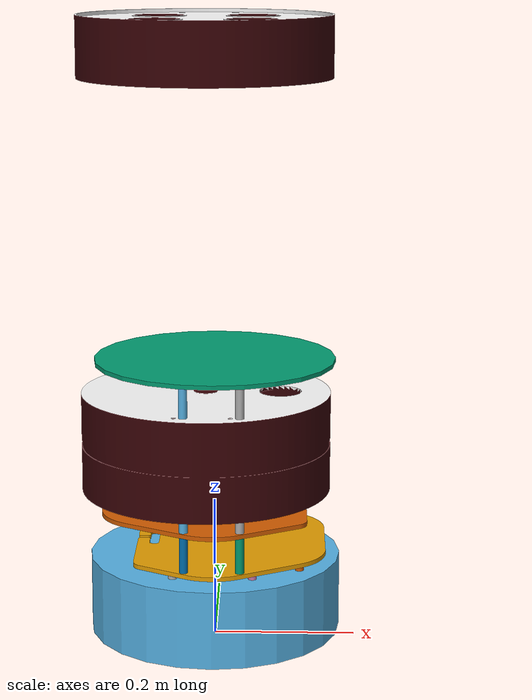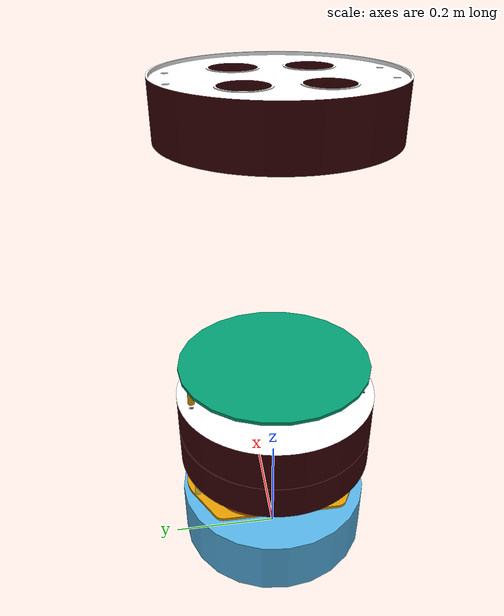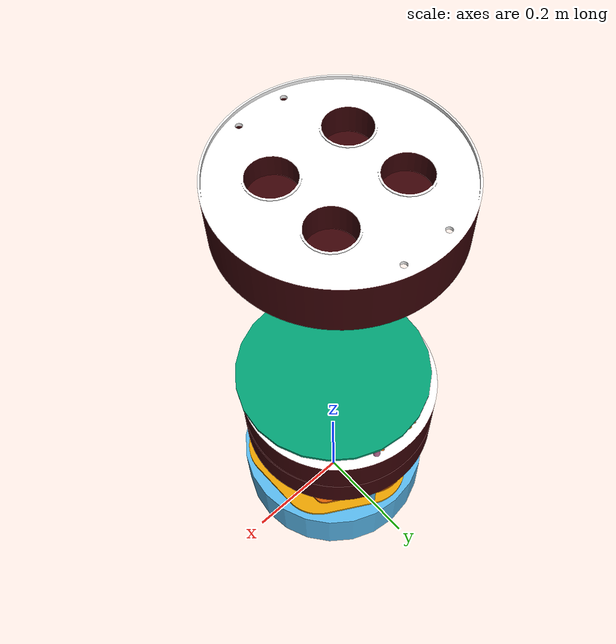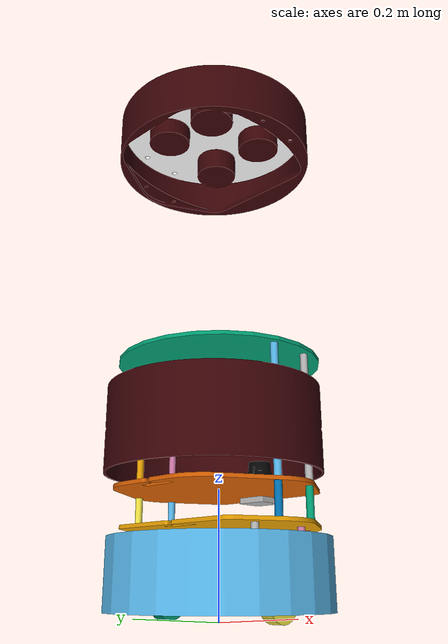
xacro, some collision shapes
<?xml version="1.0"?>

<robot name="barista" xmlns:xacro="http://ros.org/wiki/xacro">

  <xacro:arg name="robot_name" default="barista_X"/>
  <xacro:property name="robot_name_prop" value="$(arg robot_name)"/>

  <xacro:include filename="$(find barista_description)/robot/common_properties.xacro"/>
  <xacro:include filename="$(find barista_description)/robot/barista_properties.xacro"/>
  <!-- Bases -->
  <xacro:include filename="$(find barista_description)/robot/barista_kobuki.xacro" />
  <!-- Stacks -->
  <xacro:include filename="$(find barista_description)/robot/barista_hexagons.xacro"/>

  <xacro:include filename="$(find barista_description)/robot/barista_mod.xacro" />
  <xacro:include filename="$(find barista_description)/robot/barista_hokuyo.xacro" />

  <xacro:barista_kobuki robot_name="$(arg robot_name)"/>

  <xacro:if value="${'barista' in robot_name_prop}">
    <xacro:stack_hexagons parent="base_link"/>
    <xacro:barista_mod  bottom_parent="plate_middle_link" top_parent="plate_top_link"/>
  </xacro:if>

  <xacro:if value="${'mule' in robot_name_prop}">
    <xacro:stack_hexagons_mule parent="base_link"/>
    <xacro:barista_mod_mule  bottom_parent="plate_middle_link" top_parent="plate_middle_link"/>
  </xacro:if>

  <xacro:barista_hokuyo  parent="plate_middle_link" x_hok="0.116647" y_hok="0.0" z_hok="0.045" robot_name="$(arg robot_name)"/>

</robot>

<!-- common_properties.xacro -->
<!--
  Various useful properties such as constants and materials
 -->
<robot name="xacro_properties" xmlns:xacro="http://ros.org/wiki/xacro">

  <xacro:property name="M_PI" value="3.1415926535897931" />

  <xacro:property name="material_white">
    <material name="white">
      <color rgba="1 1 1 1"/>
    </material>
  </xacro:property>
  <xacro:property name="material_grey">
    <material name="grey">
      <color rgba="0.5 0.5 0.5 1"/>
    </material>
  </xacro:property>
  <xacro:property name="material_light_grey">
    <material name="light_grey">
      <color rgba="0.6 0.6 0.6 1"/>
    </material>
  </xacro:property>
  <xacro:property name="material_dark_grey">
    <material name="dark_grey">
      <color rgba="0.3 0.3 0.3 1"/>
    </material>
  </xacro:property>
  <xacro:property name="material_black">
    <material name="black">
      <color rgba="0.1 0.1 0.1 1"/>
    </material>
  </xacro:property>
  <xacro:property name="material_red">
    <material name="red">
      <color rgba="1 0 0 1"/>
    </material>
  </xacro:property>
  <xacro:property name="material_green">
    <material name="green">
      <color rgba="0.0 0.8 0.0 1"/>
    </material>
  </xacro:property>
  <xacro:property name="material_blue">
    <material name="blue">
      <color rgba="0.0 0.0 1.0 1"/>
    </material>
  </xacro:property>
  <xacro:property name="material_grey_blue">
    <material name="grey_blue">
      <color rgba="0.4 0.4 1.0 1"/>
    </material>
  </xacro:property>
  <xacro:property name="material_orange">
    <material name="orange">
      <color rgba="1.0 0.7 0.0 1"/>
    </material>
  </xacro:property>

</robot>

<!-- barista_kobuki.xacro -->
<robot name="barista_kobuki" xmlns:xacro="http://ros.org/wiki/xacro">

  <xacro:arg name="robot_name" default="barista_X"/>

  <xacro:include filename="$(find barista_description)/robot/kobuki/common_properties.urdf.xacro"/>
  <xacro:include filename="$(find barista_description)/robot/barista_kobuki_gazebo.xacro"/>

  <!-- Kobuki -->
  <xacro:macro name="barista_kobuki" params="robot_name">

    <link name="base_footprint"/>
    <joint name="base_joint" type="fixed">
      <origin xyz="0 0 0.0102" rpy="0 0 0" />
      <parent link="base_footprint"/>
      <child link="base_link" />
    </joint>
    <link name="base_link">
      <visual>
        <geometry>
          <!-- new mesh -->
          <mesh filename="package://barista_description/meshes/kobuki/main_body.dae" />
        </geometry>
        <origin xyz="0.001 0 0.05199" rpy="0 0 0"/>
      </visual>
      <collision>
        <geometry>
          <cylinder length="0.10938" radius="0.178"/>
        </geometry>
        <origin xyz="0.0 0 0.05949" rpy="0 0 0"/>
      </collision>
      <inertial>
        <!-- COM experimentally determined -->
        <origin xyz="0.01 0 0"/>
        <mass value="2.4"/> <!-- 2.4/2.6 kg for small/big battery pack -->
        <inertia ixx="0.019995" ixy="0.0" ixz="0.0"
                 iyy="0.019995" iyz="0.0"
                 izz="0.03675" />
      </inertial>
    </link>

    <joint name="${robot_name}/joint_tire_left" type="continuous">
    <parent link="base_link"/>
    <child link="${robot_name}/wheel_left_link"/>
    <origin rpy="-1.5707963267948966 0 0" xyz="0.00 0.115 0.0250"/>
    <axis xyz="0 0 1"/>
  </joint>
  <link name="${robot_name}/wheel_left_link">
    <visual>
      <geometry>
        <mesh filename="package://barista_description/meshes/wheel.dae"/>
      </geometry>
      <origin rpy="0 0 0" xyz="0 0 0"/>
    </visual>
    <collision>
      <geometry>
        <cylinder length="0.0206" radius="0.0352"/>
      </geometry>
      <origin rpy="0 0 0" xyz="0 0 0"/>
    </collision>
    <inertial>
      <mass value="0.01"/>
      <origin xyz="0 0 0"/>
      <inertia ixx="0.001" ixy="0.0" ixz="0.0" iyy="0.001" iyz="0.0" izz="0.001"/>
    </inertial>
  </link>
  <joint name="${robot_name}/joint_tire_right" type="continuous">
    <parent link="base_link"/>
    <child link="${robot_name}/wheel_right_link"/>
    <origin rpy="-1.5707963267948966 0 0" xyz="0.00 -0.115 0.0250"/>
    <axis xyz="0 0 1"/>
  </joint>
  <link name="${robot_name}/wheel_right_link">
    <visual>
      <geometry>
        <mesh filename="package://barista_description/meshes/wheel.dae"/>
      </geometry>
      <origin rpy="0 0 0" xyz="0 0 0"/>
    </visual>
    <collision>
      <geometry>
        <cylinder length="0.0206" radius="0.0350"/>
      </geometry>
      <origin rpy="0 0 0" xyz="0 0 0"/>
    </collision>
    <inertial>
      <mass value="0.01"/>
      <origin xyz="0 0 0"/>
      <inertia ixx="0.001" ixy="0.0" ixz="0.0" iyy="0.001" iyz="0.0" izz="0.001"/>
    </inertial>
  </link>

    <joint name="caster_front_joint" type="fixed">
      <parent link="base_link"/>
      <child link="caster_front_link"/>
      <origin xyz="0.115 0.0 0.007" rpy="${-M_PI/2} 0 0"/>
    </joint>
    <link name="caster_front_link">
      <collision>
        <geometry>
          <cylinder length="0.0176" radius="0.017"/>
        </geometry>
        <origin rpy="0 0 0" xyz="0 0 0"/>
      </collision>
      <inertial>
        <mass value="0.01" />
        <origin xyz="0 0 0" />
        <inertia ixx="0.001" ixy="0.0" ixz="0.0"
                 iyy="0.001" iyz="0.0"
                 izz="0.001" />
      </inertial>
    </link>

    <joint name="caster_back_joint" type="fixed">
      <parent link="base_link"/>
      <child link="caster_back_link"/>
      <origin xyz="-0.135 0.0 0.009" rpy="${-M_PI/2} 0 0"/>
    </joint>
    <link name="caster_back_link">
      <collision>
        <geometry>
          <cylinder length="0.0176" radius="0.017"/>
        </geometry>
        <origin rpy="0 0 0" xyz="0 0 0"/>
      </collision>
      <inertial>
        <mass value="0.01" />
        <origin xyz="0 0 0" />
        <inertia ixx="0.001" ixy="0.0" ixz="0.0"
                 iyy="0.001" iyz="0.0"
                 izz="0.001" />
      </inertial>
    </link>

    <!-- Kobuki's sensors -->
    <joint name="gyro_joint" type="fixed">
      <axis xyz="0 1 0"/>
      <origin xyz="0.056 0.062 0.0202" rpy="0 0 0"/>
      <parent link="base_link"/>
      <child link="gyro_link"/>
    </joint>
    <link name="gyro_link">
      <inertial>
        <mass value="0.001"/>
        <origin xyz="0 0 0" rpy="0 0 0"/>
        <inertia ixx="0.0001" ixy="0" ixz="0"
                 iyy="0.000001" iyz="0"
                 izz="0.0001"/>
      </inertial>
    </link>

    <joint name="cliff_sensor_left_joint" type="fixed">
      <origin xyz="0.08734 0.13601 0.0214" rpy="0 ${M_PI/2} 0" />
      <parent link="base_link"/>
      <child link="cliff_sensor_left_link" />
    </joint>
    <link name="cliff_sensor_left_link">
      <inertial>
        <mass value="0.0001" />
        <origin xyz="0 0 0" />
        <inertia ixx="0.0001" ixy="0.0" ixz="0.0"
                 iyy="0.0001" iyz="0.0"
                 izz="0.0001" />
      </inertial>
    </link>

    <joint name="cliff_sensor_right_joint" type="fixed">
      <origin xyz="0.085 -0.13601 0.0214" rpy="0 ${M_PI/2} 0" />
      <parent link="base_link"/>
      <child link="cliff_sensor_right_link" />
    </joint>
    <link name="cliff_sensor_right_link">
      <inertial>
        <mass value="0.0001" />
        <origin xyz="0 0 0" />
        <inertia ixx="0.0001" ixy="0.0" ixz="0.0"
                 iyy="0.0001" iyz="0.0"
                 izz="0.0001" />
      </inertial>
    </link>

    <joint name="cliff_sensor_front_joint" type="fixed">
      <origin xyz="0.156 0.00 0.0214" rpy="0 ${M_PI/2} 0" />
      <parent link="base_link"/>
      <child link="cliff_sensor_front_link" />
    </joint>
    <link name="cliff_sensor_front_link">
      <inertial>
        <mass value="0.0001" />
        <origin xyz="0 0 0" />
        <inertia ixx="0.0001" ixy="0.0" ixz="0.0"
                 iyy="0.0001" iyz="0.0"
                 izz="0.0001" />
      </inertial>
    </link>

    <!-- Kobuki Gazebo simulation details -->
    <xacro:kobuki_sim robot_name="$(arg robot_name)"/>

  </xacro:macro>

</robot>

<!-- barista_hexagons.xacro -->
<!--
  Hexagon stacks
 -->
<robot name="stack_hexagons" xmlns:xacro="http://ros.org/wiki/xacro">
  <xacro:include filename="$(find barista_description)/robot/turtlebot/common_properties.urdf.xacro"/>

  <!-- Xacro properties -->
  <xacro:property name="M_SCALE" value="0.001"/>

  <!-- Xacro macros -->
  <!-- Pole macros -->
  <xacro:macro name="stack_bottom_pole" params="parent number x_loc y_loc z_loc">
    <joint name="pole_bottom_${number}_joint" type="fixed">
      <origin xyz="${x_loc} ${y_loc} ${z_loc}" rpy="0 0 0"/>
      <parent link="${parent}"/>
      <child link="pole_bottom_${number}_link"/>
    </joint>
    <link name="pole_bottom_${number}_link">
      <visual>
        <origin xyz="0 0 0" rpy="0 0 0"/>
        <geometry>
          <mesh filename="package://barista_description/meshes/turtlebot/stacks/hexagons/pole_bottom_v2.dae"/>
        </geometry>
      </visual>
      <collision>
        <origin xyz="0 0 0" rpy="0 0 0"/>
        <geometry>
          <cylinder length="0.0492" radius="0.006"/>
        </geometry>
      </collision>
      <inertial>
        <mass value="0.008"/>
        <origin xyz="0 0 0" rpy="0 0 0"/>
        <inertia ixx="0.000001686" ixy="0.0" ixz="0.0"
                 iyy="0.000001686" iyz="0.0"
                 izz="0.000000144"/>
      </inertial>
    </link>
  </xacro:macro>

  <xacro:macro name="stack_middle_pole" params="parent number x_loc y_loc z_loc">
    <joint name="pole_middle_${number}_joint" type="fixed">
      <origin xyz="${x_loc} ${y_loc} ${z_loc}" rpy="0 0 0" />
      <parent link="${parent}"/>
      <child link="pole_middle_${number}_link"/>
    </joint>
    <link name="pole_middle_${number}_link">
      <visual>
        <origin xyz="0 0 0" rpy="0 ${M_PI} 0"/>
        <geometry>
          <mesh filename="package://barista_description/meshes/turtlebot/stacks/hexagons/pole_middle_v2.dae"/>
        </geometry>
      </visual>
      <collision>
        <origin xyz="0 0 0" rpy="0 0 0"/>
        <geometry>
          <cylinder length="0.0608" radius="0.006"/>
        </geometry>
      </collision>
      <inertial>
        <mass value="0.012"/>
        <origin xyz="0 0 0"/>
        <inertia ixx="0.000003805" ixy="0.0" ixz="0.0"
                 iyy="0.000003805" iyz="0.0"
                 izz="0.000000216"/>
      </inertial>
    </link>
  </xacro:macro>

  <xacro:macro name="stack_top_pole" params="parent number x_loc y_loc z_loc">
    <joint name="pole_top_${number}_joint" type="fixed">
      <origin xyz="${x_loc} ${y_loc} ${z_loc}" rpy="0 0 0"/>
      <parent link="${parent}"/>
      <child link="pole_top_${number}_link"/>
    </joint>
    <link name="pole_top_${number}_link">
      <visual>
        <origin xyz=" 0 0 0" rpy="0 0 0"/>
        <geometry>
          <mesh filename="package://barista_description/meshes/turtlebot/stacks/hexagons/pole_top_v2.dae"/>
        </geometry>
      </visual>
      <collision>
        <origin xyz="0 0 0" rpy="0 0 0"/>
        <geometry>
          <cylinder length="0.2032" radius="0.006"/>
        </geometry>
      </collision>
      <inertial>
        <mass value="0.060"/>
        <origin xyz="0 0 0"/>
        <inertia ixx="0.000206991" ixy="0.0" ixz="0.0"
                 iyy="0.000206991" iyz="0.0"
                 izz="0.000001080"/>
      </inertial>
    </link>
  </xacro:macro>

  <xacro:macro name="stack_3d_sensor_pole" params="parent number x_loc y_loc z_loc">
    <joint name="pole_kinect_${number}_joint" type="fixed">
      <origin xyz="${x_loc} ${y_loc} ${z_loc}" rpy="0 0 0"/>
      <parent link="${parent}"/>
      <child link="pole_kinect_${number}_link"/>
    </joint>
    <link name="pole_kinect_${number}_link">
      <visual>
        <origin xyz="0 0 -0.01" rpy="0 0 0"/>
        <geometry>
          <mesh filename="package://barista_description/meshes/turtlebot/sensors/sensor_pole.dae" />
        </geometry>
      </visual>
      <collision>
        <origin xyz="0 0 0" rpy="0 0 0"/>
        <geometry>
          <cylinder length="0.0936" radius="0.006"/>
        </geometry>
      </collision>
      <inertial>
        <mass value="0.020"/>
        <origin xyz="0 0 0"/>
        <inertia ixx="0.000014782" ixy="0.0" ixz="0.0"
                 iyy="0.000014782" iyz="0.0"
                 izz="0.000000360"/>
      </inertial>
    </link>
  </xacro:macro>

  <xacro:macro name="stack_hexagons" params="parent">

    <xacro:stack_hexagons_base parent="${parent}"/>
    <xacro:stack_hexagons_top parent="${parent}"/>

  </xacro:macro>

  <xacro:macro name="stack_hexagons_top" params="parent">

    <xacro:stack_top_pole parent="${parent}" number="0" x_loc= "0.0381" y_loc= "0.1505" z_loc="0.2920"/>
    <xacro:stack_top_pole parent="${parent}" number="1" x_loc= "0.0381" y_loc="-0.1505" z_loc="0.2920"/>
    <xacro:stack_top_pole parent="${parent}" number="2" x_loc="-0.0381" y_loc= "0.1505" z_loc="0.2920"/>
    <xacro:stack_top_pole parent="${parent}" number="3" x_loc="-0.0381" y_loc="-0.1505" z_loc="0.2920"/>

    <joint name="plate_top_joint" type="fixed">
      <origin xyz="-0.01364 0.0  0.3966" rpy="0 0 0"/>
      <parent link="${parent}"/>
      <child link="plate_top_link"/>
    </joint>

    <link name="plate_top_link">
      <visual>
        <origin xyz="0 0 0" rpy="0 0 0"/>
        <geometry>
          <mesh filename="package://barista_description/meshes/stacks/hexagons/plate_top.dae"/>
        </geometry>
      </visual>
      <collision>
        <origin xyz="0.01364 0 0" rpy="0 0 0"/>
        <geometry>
          <cylinder length="0.006" radius="0.170"/>
        </geometry>
      </collision>
      <inertial>
        <mass value="0.520"/>
        <origin xyz="0 0 0"/>
        <inertia ixx="0.003328" ixy="0.0" ixz="0.0"
                 iyy="0.003328" iyz="0.0"
                 izz="0.006656" />
      </inertial>
    </link>
  </xacro:macro>

  <xacro:macro name="stack_hexagons_base" params="parent">
    <xacro:stack_bottom_pole parent="${parent}" number="0" x_loc= "0.120" y_loc= "0.082" z_loc="0.1028"/>
    <xacro:stack_bottom_pole parent="${parent}" number="1" x_loc= "0.055" y_loc= "0.120" z_loc="0.1028"/>
    <xacro:stack_bottom_pole parent="${parent}" number="2" x_loc="-0.055" y_loc= "0.120" z_loc="0.1028"/>
    <xacro:stack_bottom_pole parent="${parent}" number="3" x_loc= "0.120" y_loc="-0.082" z_loc="0.1028"/>
    <xacro:stack_bottom_pole parent="${parent}" number="4" x_loc= "0.055" y_loc="-0.120" z_loc="0.1028"/>
    <xacro:stack_bottom_pole parent="${parent}" number="5" x_loc="-0.055" y_loc="-0.120" z_loc="0.1028"/>

    <joint name="plate_bottom_joint" type="fixed">
      <origin xyz="0.02364 0.0 0.1306" rpy="0 0 0"/>
      <parent link="${parent}"/>
      <child link="plate_bottom_link"/>
    </joint>
    <link name="plate_bottom_link">
      <visual>
        <origin xyz="0 0 0" rpy="0 0 0"/>
        <geometry>
          <mesh filename="package://barista_description/meshes/turtlebot/stacks/hexagons/plate_bottom_v2.dae"/>
        </geometry>
      </visual>
      <collision>
        <origin xyz="-0.02364 0 0" rpy="0 0 0"/>
        <geometry>
          <cylinder length="0.006" radius="0.170"/>
        </geometry>
      </collision>
      <inertial>
        <mass value="0.520" />
        <origin xyz="0 0 0" />
        <inertia ixx="0.003328" ixy="0.0" ixz="0.0"
                 iyy="0.003328" iyz="0.0"
                 izz="0.006656" />
      </inertial>
    </link>

    <xacro:stack_middle_pole parent="${parent}" number="0" x_loc= "0.0381" y_loc= "0.1505" z_loc="0.1640"/>
    <xacro:stack_middle_pole parent="${parent}" number="1" x_loc= "0.0381" y_loc="-0.1505" z_loc="0.1640"/>
    <xacro:stack_middle_pole parent="${parent}" number="2" x_loc="-0.0381" y_loc= "0.1505" z_loc="0.1640"/>
    <xacro:stack_middle_pole parent="${parent}" number="3" x_loc="-0.0381" y_loc="-0.1505" z_loc="0.1640"/>

    <joint name="plate_middle_joint" type="fixed">
      <origin xyz="-0.01364 0.0 0.1874" rpy="0 0 0"/>
      <parent link="${parent}"/>
      <child link="plate_middle_link"/>
    </joint>
    <link name="plate_middle_link">
      <visual>
        <origin xyz="0 0 0" rpy="0 0 0"/>
        <geometry>
          <mesh filename="package://barista_description/meshes/turtlebot/stacks/hexagons/plate_middle_v2.dae"/>
        </geometry>
      </visual>
      <collision>
        <origin xyz="0.01364 0.0 0.0" rpy="0 0 0"/>
        <geometry>
          <cylinder length="0.006" radius="0.170"/>
        </geometry>
      </collision>
      <inertial>
        <mass value="0.520" />
        <origin xyz="0 0 0" />
        <inertia ixx="0.003328" ixy="0.0" ixz="0.0"
                 iyy="0.003328" iyz="0.0"
                 izz="0.006656" />
      </inertial>
    </link>

  </xacro:macro>

  <!-- MULE Barista related mods -->
    <xacro:macro name="stack_hexagons_mule" params="parent">

    <xacro:stack_hexagons_base parent="${parent}"/>
    <xacro:stack_hexagons_top_mule parent="${parent}"/>

  </xacro:macro>

  <xacro:macro name="stack_hexagons_top_mule" params="parent">

    <xacro:stack_middle_pole parent="${parent}" number="4" x_loc= "0.0381" y_loc= "0.1505" z_loc="0.2570"/>
    <xacro:stack_middle_pole parent="${parent}" number="5" x_loc= "0.0381" y_loc="-0.1505" z_loc="0.2570"/>
    <xacro:stack_middle_pole parent="${parent}" number="6" x_loc="-0.0381" y_loc= "0.1505" z_loc="0.2570"/>
    <xacro:stack_middle_pole parent="${parent}" number="7" x_loc="-0.0381" y_loc="-0.1505" z_loc="0.2570"/>

  </xacro:macro>

</robot>

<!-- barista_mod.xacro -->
<!--
  Hexagon stacks
 -->
<robot name="stack_hexagons" xmlns:xacro="http://ros.org/wiki/xacro">
  <xacro:include filename="$(find barista_description)/robot/turtlebot/common_properties.urdf.xacro"/>

  <xacro:macro name="barista_mod" params="bottom_parent top_parent ">

    <link name="barista_top_link">
      <visual>
        <origin xyz="0 0 0" rpy="0 0 0"/>
        <geometry>
          <xacro:if value="${robot_name_prop == 'barista_1'}">
            <mesh filename="package://barista_description/meshes/barista/TOP_colour_1.dae"/>
          </xacro:if>
          <xacro:if value="${robot_name_prop == 'barista_2'}">
            <mesh filename="package://barista_description/meshes/barista/TOP_colour_2.dae"/>
          </xacro:if>
          <xacro:if value="${robot_name_prop != 'barista_1' and robot_name_prop != 'barista_2'}">
            <mesh filename="package://barista_description/meshes/barista/TOP_colour.dae"/>
          </xacro:if>
        </geometry>
      </visual>
      <collision>
        <origin xyz="0 0 0" rpy="0 0 0"/>
        <geometry>
          <mesh filename="package://barista_description/meshes/barista/TOP_collision_lip_sd.stl"/>
        </geometry>
      </collision>
      <inertial>
        <mass value="0.1" />
        <origin xyz="0 0 0" />
        <inertia ixx="0.00083462153339" ixy="0.0" ixz="0.0"
                 iyy="0.00083462153339" iyz="0.0"
                 izz="0.00154882640011" />
      </inertial>
    </link>

    <joint name="barista_top_joint" type="fixed">
      <origin xyz="-0.01364 0.0  0.3966" rpy="0 0 0"/>
      <parent link="${top_parent}"/>
      <child link="barista_top_link"/>
    </joint>

    <link name="barista_bottom_link">
      <visual>
        <origin xyz="0 0 0" rpy="0 0 0"/>
        <geometry>
          <xacro:if value="${robot_name_prop == 'barista_1'}">
            <mesh filename="package://barista_description/meshes/barista/BOTTOM_colour_1.dae"/>
          </xacro:if>
          <xacro:if value="${robot_name_prop == 'barista_2'}">
            <mesh filename="package://barista_description/meshes/barista/BOTTOM_colour_2.dae"/>
          </xacro:if>
          <xacro:if value="${robot_name_prop != 'barista_1' and robot_name_prop != 'barista_2'}">
            <mesh filename="package://barista_description/meshes/barista/BOTTOM_colour.dae"/>
          </xacro:if>
        </geometry>
      </visual>
      <inertial>
        <mass value="0.1" />
        <origin xyz="0 0 0" />
        <inertia ixx="0.00093774653339" ixy="0.0" ixz="0.0"
                 iyy="0.00093774653339" iyz="0.0"
                 izz="0.00154882640011" />
      </inertial>
    </link>

    <joint name="barista_bottom_joint" type="fixed">
      <origin xyz="0.001 0.0 0.12" rpy="0 0 0"/>
      <parent link="${bottom_parent}"/>
      <child link="barista_bottom_link"/>
    </joint>

  </xacro:macro>

  <!-- Mule Related -->
  <xacro:macro name="barista_mod_mule" params="bottom_parent top_parent">

    <link name="barista_top_link">
      <visual>
        <origin xyz="0 0 0" rpy="0 0 0"/>
        <geometry>
          <mesh filename="package://barista_description/meshes/barista/TOP_mule.dae"/>
        </geometry>
      </visual>
      <collision>
        <origin xyz="0 0 0" rpy="0 0 0"/>
        <geometry>
          <mesh filename="package://barista_description/meshes/barista/TOP_mule_col_sd.stl"/>
        </geometry>
      </collision>
      <inertial>
        <mass value="0.1" />
        <origin xyz="0 0 0" />
        <inertia ixx="0.00083462153339" ixy="0.0" ixz="0.0"
                 iyy="0.00083462153339" iyz="0.0"
                 izz="0.00154882640011" />
      </inertial>
    </link>

    <joint name="barista_top_joint" type="fixed">
      <origin xyz="0.00364 0.0 0.24583" rpy="0 0 0"/>
      <parent link="${top_parent}"/>
      <child link="barista_top_link"/>
    </joint>

    <link name="barista_bottom_link">
      <visual>
        <origin xyz="0 0 0" rpy="0 0 0"/>
        <geometry>
          <mesh filename="package://barista_description/meshes/barista/BOTTOM_mule.dae"/>
        </geometry>
      </visual>
      <inertial>
        <mass value="0.1" />
        <origin xyz="0 0 0" />
        <inertia ixx="0.00093774653339" ixy="0.0" ixz="0.0"
                 iyy="0.00093774653339" iyz="0.0"
                 izz="0.00154882640011" />
      </inertial>
    </link>

    <joint name="barista_bottom_joint" type="fixed">
      <origin xyz="0.001 0.0 0.12" rpy="0 0 0"/>
      <parent link="${bottom_parent}"/>
      <child link="barista_bottom_link"/>
    </joint>

  </xacro:macro>

</robot>

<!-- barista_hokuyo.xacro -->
<robot name="hokuyo" xmlns:xacro="http://ros.org/wiki/xacro">

  <xacro:macro name="barista_hokuyo" params="parent x_hok y_hok z_hok robot_name">

    <link name="laser_sensor_link">
	    <inertial>
		    <mass value="1e-5"/>
		    <origin xyz="0 0 0" rpy="0 0 0"/>
		    <inertia ixx="1e-6" ixy="0" ixz="0" iyy="1e-6" iyz="0" izz="1e-6"/>
	    </inertial>
	    <collision>
		    <origin xyz="0 0 0" rpy="0 0 0"/>
		    <geometry>
			    <box size="0.1 0.1 0.1"/>
		    </geometry>
	    </collision>
	    <visual>
		    <origin xyz="0 0 0" rpy="0 0 0"/>
		    <geometry>
			    <mesh filename="package://barista_description/meshes/turtlebot/sensors/hokuyo.dae"/>
		    </geometry>
	    </visual>
    </link>

    <joint name="laser_sensor_joint" type="fixed">
    	<origin xyz="${x_hok} ${y_hok} ${z_hok}" rpy="0 0 0"/>
    	<parent link="${parent}"/>
    	<child link="laser_sensor_link"/>
    </joint>

    <gazebo reference="laser_sensor_link">
  		<sensor name="lidar" type="ray">
			<always_on>true</always_on>
			<visualize>false</visualize>
			<update_rate>20</update_rate>
			<ray>
				<scan>
					<horizontal>
					<samples>128</samples>
					<resolution>1.000000</resolution>
					<min_angle>0.000000</min_angle>
					<max_angle>6.280000</max_angle>
					</horizontal>
				</scan>
				<range>
					<min>0.120000</min>
					<max>3.5</max>
					<resolution>0.015000</resolution>
				</range>
				<noise>
					<type>gaussian</type>
					<mean>0.0</mean>
					<stddev>0.01</stddev>
				</noise>
			</ray>
			<plugin name="scan" filename="libgazebo_ros_ray_sensor.so">
				<ros>
					<namespace>${robot_name}</namespace>
					<remapping>~/out:=scan</remapping>
				</ros>
				<output_type>sensor_msgs/LaserScan</output_type>
				<frame_name>${robot_name}/laser_sensor_link</frame_name>
			</plugin>

		</sensor>
  	</gazebo>

  </xacro:macro>

</robot>
